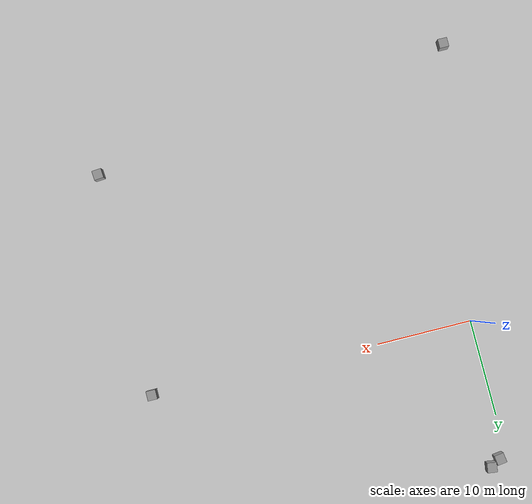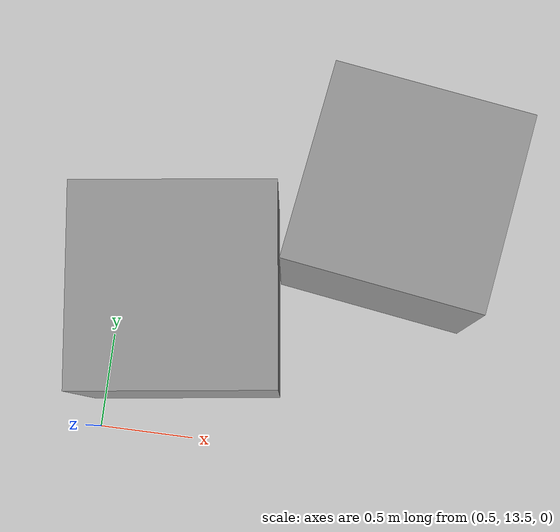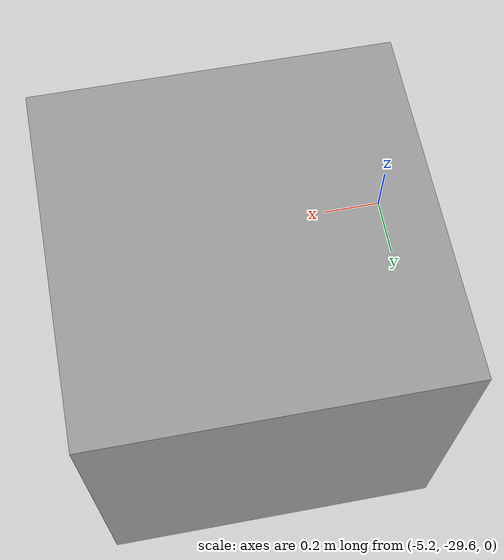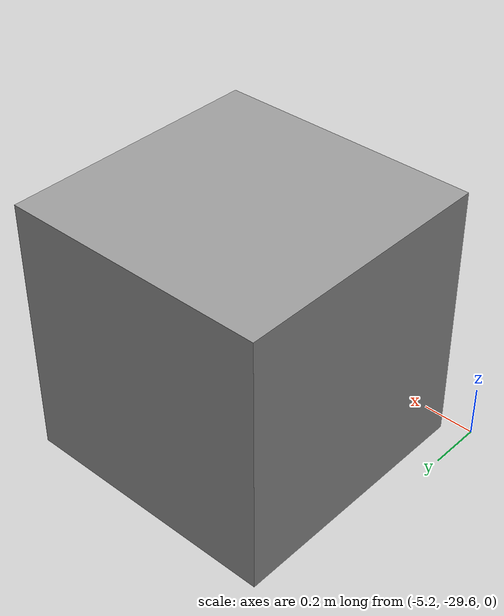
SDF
<sdf version="1.7">
 <world name="racecar_willow">
  <light name="sun" type="directional">
   <pose>0 0 10 0 -0 0</pose>
   <diffuse>0.8 0.8 0.8 1</diffuse>
   <specular>0.2 0.2 0.2 1</specular>
   <attenuation>
    <range>1000</range>
    <constant>0.9</constant>
    <linear>0.01</linear>
    <quadratic>0.001</quadratic>
   </attenuation>
   <direction>-0.5 0.1 -0.9</direction>
   <spot><inner_angle>0</inner_angle><outer_angle>0</outer_angle><falloff>0</falloff></spot>
  </light>
  <model name="ground_plane">
   <static>1</static>
   <link name="link">
    <collision name="collision">
     <geometry><plane><normal>0 0 1</normal><size>150 150</size></plane></geometry>
     <surface><friction><ode><mu>100</mu><mu2>50</mu2></ode></friction></surface>
    </collision>
    <visual name="visual">
     <cast_shadows>0</cast_shadows>
     <geometry><plane><normal>0 0 1</normal><size>150 150</size></plane></geometry>
     <material>
      <script><uri>file://media/materials/scripts/gazebo.material</uri><name>Gazebo/Grey</name></script>
     </material>
    </visual>
   </link>
  </model>
  <gravity>0 0 -9.8</gravity>
  <magnetic_field>6e-06 2.3e-05 -4.2e-05</magnetic_field>
  <atmosphere type="adiabatic"/>
  <physics type="ode">
   <max_step_size>0.001</max_step_size>
   <real_time_factor>1</real_time_factor>
   <real_time_update_rate>1000</real_time_update_rate>
  </physics>
  <scene><ambient>0.4 0.4 0.4 1</ambient><background>0.7 0.7 0.7 1</background><shadows>1</shadows></scene>
  <spherical_coordinates>
   <surface_model>EARTH_WGS84</surface_model>
   <latitude_deg>0</latitude_deg>
   <longitude_deg>0</longitude_deg>
   <elevation>0</elevation>
   <heading_deg>0</heading_deg>
  </spherical_coordinates>
  <model name="unit_box">
   <pose>1.93658 14.8108 0.5 0 -0 -0.149033</pose>
   <link name="link">
    <inertial>
     <mass>1</mass>
     <inertia>
      <ixx>0.166667</ixx>
      <ixy>0</ixy>
      <ixz>0</ixz>
      <iyy>0.166667</iyy>
      <iyz>0</iyz>
      <izz>0.166667</izz>
     </inertia>
    </inertial>
    <collision name="collision"><geometry><box><size>1 1 1</size></box></geometry></collision>
    <visual name="visual">
     <geometry><box><size>1 1 1</size></box></geometry>
     <material>
      <script><name>Gazebo/Grey</name><uri>file://media/materials/scripts/gazebo.material</uri></script>
     </material>
    </visual>
   </link>
  </model>
  <model name="unit_box_0">
   <pose>0.881515 14.2051 0.5 0 -0 0.131017</pose>
   <link name="link">
    <inertial>
     <mass>1</mass>
     <inertia>
      <ixx>0.166667</ixx>
      <ixy>0</ixy>
      <ixz>0</ixz>
      <iyy>0.166667</iyy>
      <iyz>0</iyz>
      <izz>0.166667</izz>
     </inertia>
    </inertial>
    <collision name="collision"><geometry><box><size>1 1 1</size></box></geometry></collision>
    <visual name="visual">
     <geometry><box><size>1 1 1</size></box></geometry>
     <material>
      <script><name>Gazebo/Grey</name><uri>file://media/materials/scripts/gazebo.material</uri></script>
     </material>
    </visual>
   </link>
  </model>
  <model name="unit_box_1">
   <pose>-4.60316 -29.049 0.5 0 -0 0</pose>
   <link name="link">
    <inertial>
     <mass>1</mass>
     <inertia>
      <ixx>0.166667</ixx>
      <ixy>0</ixy>
      <ixz>0</ixz>
      <iyy>0.166667</iyy>
      <iyz>0</iyz>
      <izz>0.166667</izz>
     </inertia>
    </inertial>
    <collision name="collision"><geometry><box><size>1 1 1</size></box></geometry></collision>
    <visual name="visual">
     <geometry><box><size>1 1 1</size></box></geometry>
     <material>
      <script><name>Gazebo/Grey</name><uri>file://media/materials/scripts/gazebo.material</uri></script>
     </material>
    </visual>
   </link>
  </model>
  <model name="unit_box_2">
   <pose>33.9923 -24.345 0.5 0 -0 0.085664</pose>
   <link name="link">
    <inertial>
     <mass>1</mass>
     <inertia>
      <ixx>0.166667</ixx>
      <ixy>0</ixy>
      <ixz>0</ixz>
      <iyy>0.166667</iyy>
      <iyz>0</iyz>
      <izz>0.166667</izz>
     </inertia>
    </inertial>
    <collision name="collision"><geometry><box><size>1 1 1</size></box></geometry></collision>
    <visual name="visual">
     <geometry><box><size>1 1 1</size></box></geometry>
     <material>
      <script><name>Gazebo/Grey</name><uri>file://media/materials/scripts/gazebo.material</uri></script>
     </material>
    </visual>
   </link>
  </model>
  <model name="unit_box_3">
   <pose>33.8343 -0.75654 0.5 0 -0 0</pose>
   <link name="link">
    <inertial>
     <mass>1</mass>
     <inertia>
      <ixx>0.166667</ixx>
      <ixy>0</ixy>
      <ixz>0</ixz>
      <iyy>0.166667</iyy>
      <iyz>0</iyz>
      <izz>0.166667</izz>
     </inertia>
    </inertial>
    <collision name="collision"><geometry><box><size>1 1 1</size></box></geometry></collision>
    <visual name="visual">
     <geometry><box><size>1 1 1</size></box></geometry>
     <material>
      <script><name>Gazebo/Grey</name><uri>file://media/materials/scripts/gazebo.material</uri></script>
     </material>
    </visual>
   </link>
  </model>
 </world>
</sdf>
